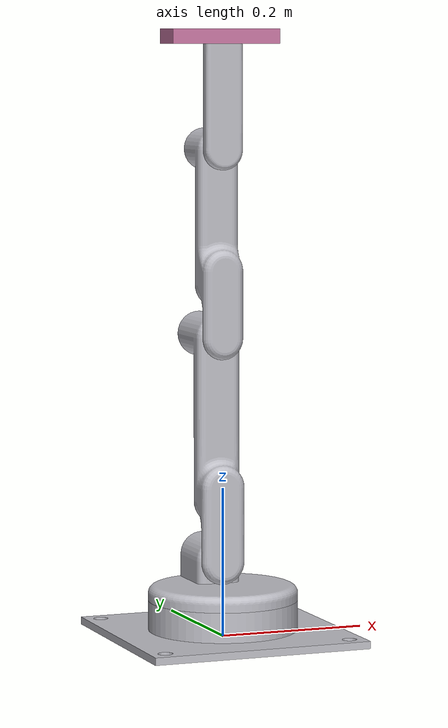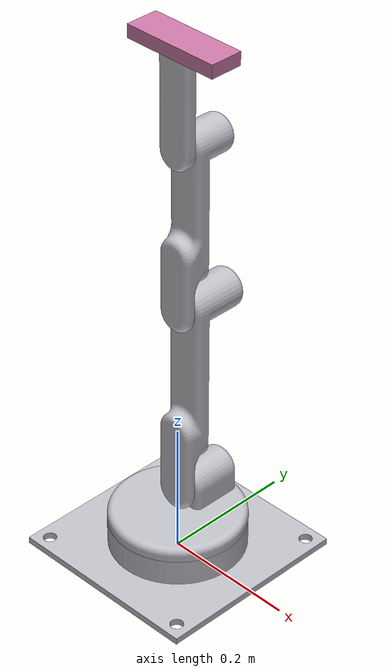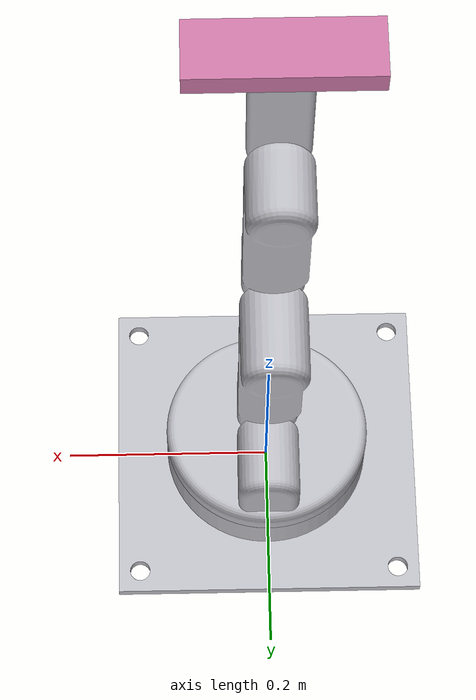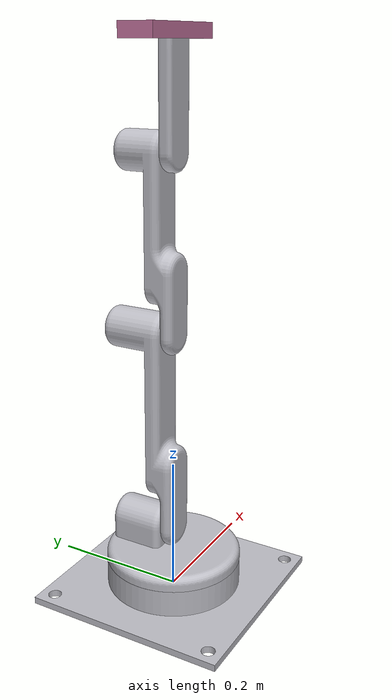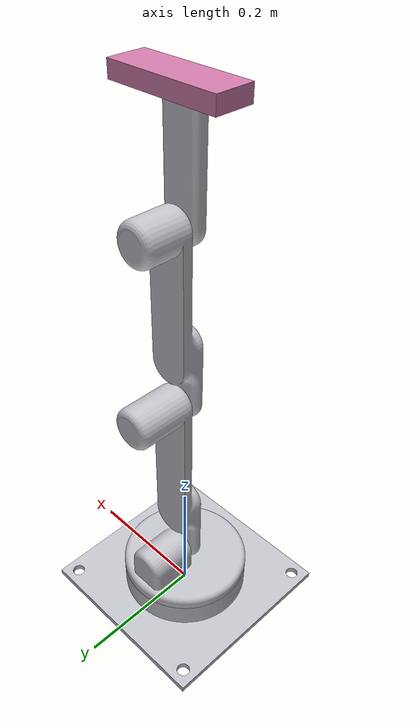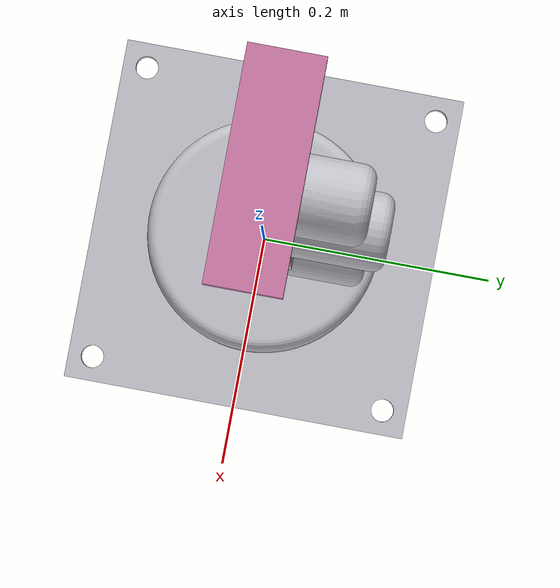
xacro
<robot xmlns:ns0="http://www.ros.org/wiki/xacro" name="Design">

<ns0:include filename="$(find main_description)/urdf/macros2.xacro" />
<ns0:include filename="$(find main_description)/urdf/arm.xacro" />

<ns0:property name="PI" value="3.14159" />

<link name="world" />

<link name="palm">
	<visual>
		<geometry>
			<box size="0.15 0.05 0.02" />
		</geometry>
	</visual>
	<inertial>
		<mass value="0.1" />
		<inertia ixx="0.001" ixy="0.001" ixz="0.001" iyy="0.001" iyz="0.001" izz="0.001" />
	</inertial>
	<collision>
		<geometry>
			<box size="0.15 0.05 0.02" />
		</geometry>
		</collision>
</link>

<gazebo reference="palm">
	<mu1>2000</mu1>
	<mu2>2000</mu2>
	<selfCollide>true</selfCollide>
	<gravity>true</gravity>
</gazebo>

<joint name="palm_arm_joint" type="fixed">
    <parent link="Link4_1" />
    <child link="palm" />
	<origin rpy="0 0 0" xyz="0.0 0 0.15" />
</joint>

<gazebo>
  	<plugin filename="libgazebo_ros_control.so" name="gazebo_ros_control">
		<robotNamespace />
  	</plugin>
 	<plugin filename="libspring_joint_plugin.so" name="spring_joint_plugin">
		<kConstant> 0.4 </kConstant>
	</plugin>
	<plugin filename="libjoint_controller_plugin.so" name="joint_controller_plugin">
		<jointNamesParam> arm_controller/ </jointNamesParam>
	</plugin>
	<plugin filename="libjoint_force_visualiser_plugin.so" name="joint_force_visualier_plugin">
		<robotNamespace />
	</plugin>

</gazebo>

</robot>

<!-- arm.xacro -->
<robot name="Design" xmlns:xacro="http://www.ros.org/wiki/xacro">

<xacro:include filename="$(find main_description)/urdf/Design.trans" />

<!--  PROPERTIES  -->

<xacro:property name="strength" value="10000"/>
<xacro:property name="speed" value = "0.01"/>
<xacro:property name="damping" value = "0"/>

<xacro:property name="offset" value="-0.05"/>

<!-- LINKS  -->

<link name="base_link">
  <inertial>
    <origin rpy="0 0 0" xyz="-6.108345103356556e-15 5.090287586130463e-17 0.01965246769632399"/>
    <mass value="16.83095492294922"/>
    <inertia ixx="0.079936" ixy="0.0" ixz="-0.0" iyy="0.079936" iyz="0.0" izz="0.152021"/>
  </inertial>
  <visual>
    <origin rpy="0 0 0" xyz="0 0 0"/>
    <geometry>
      <mesh filename="package://main_description/meshes/base_link.stl" scale="0.001 0.001 0.001"/>
    </geometry>
    <material name="silver"/>
  </visual>
  <collision>
    <origin rpy="0 0 0" xyz="0 0 0"/>
    <geometry>
      <mesh filename="package://main_description/meshes/base_link.stl" scale="0.001 0.001 0.001"/>
    </geometry>
  </collision>
</link>

<link name="Link1_1">
  <inertial>
    <origin rpy="0 0 0" xyz="-1.2279118486616705e-05 0.01442476351451121 0.020602870891923072"/>
    <mass value="0.9178712114753625"/>
    <inertia ixx="0.002553" ixy="0.0" ixz="0.0" iyy="0.002018" iyz="-0.00035" izz="0.00387"/>
  </inertial>
  <visual>
    <origin rpy="0 0 0" xyz="-0.0 -0.0 -0.05"/>
    <geometry>
      <mesh filename="package://main_description/meshes/Link1_1.stl" scale="0.001 0.001 0.001"/>
    </geometry>
    <material name="silver"/>
  </visual>
  <collision>
    <origin rpy="0 0 0" xyz="-0.0 -0.0 -0.05"/>
    <geometry>
      <mesh filename="package://main_description/meshes/Link1_1.stl" scale="0.001 0.001 0.001"/>
    </geometry>
  </collision>
</link>

<link name="Link2_1">
  <inertial>
    <origin rpy="0 0 0" xyz="-2.968335648842978e-07 0.018054267252499347 0.1868568711048091"/>
    <mass value="0.712050673323837"/>
    <inertia ixx="0.008737" ixy="0.0" ixz="0.0" iyy="0.008392" iyz="-0.001509" izz="0.000705"/>
  </inertial>
  <visual>
    <origin rpy="0 0 0" xyz="4.2e-05 -0.009807 -0.1"/>
    <geometry>
      <mesh filename="package://main_description/meshes/Link2_1.stl" scale="0.001 0.001 0.001"/>
    </geometry>
    <material name="silver"/>
  </visual>
  <collision>
    <origin rpy="0 0 0" xyz="4.2e-05 -0.009807 -0.1"/>
    <geometry>
      <mesh filename="package://main_description/meshes/Link2_1.stl" scale="0.001 0.001 0.001"/>
    </geometry>
  </collision>
</link>

<link name="Link3_1">
  <inertial>
    <origin rpy="0 0 0" xyz="3.894856228585856e-05 0.012744269230917583 0.14887041213898544"/>
    <mass value="0.5352959751924613"/>
    <inertia ixx="0.004471" ixy="-0.0" ixz="-1e-06" iyy="0.004348" iyz="-0.000747" izz="0.000361"/>
  </inertial>
  <visual>
    <origin rpy="0 0 0" xyz="4.2e-05 -0.009807 -0.4"/>
    <geometry>
      <mesh filename="package://main_description/meshes/Link3_1.stl" scale="0.001 0.001 0.001"/>
    </geometry>
    <material name="silver"/>
  </visual>
  <collision>
    <origin rpy="0 0 0" xyz="4.2e-05 -0.009807 -0.4"/>
    <geometry>
      <mesh filename="package://main_description/meshes/Link3_1.stl" scale="0.001 0.001 0.001"/>
    </geometry>
  </collision>
</link>

<link name="Link4_1">
  <inertial>
    <origin rpy="0 0 0" xyz="-3.684166078735014e-07 -0.010000499675700233 0.06497387205009375"/>
    <mass value="0.18168902324741887"/>
    <inertia ixx="0.000446" ixy="0.0" ixz="0.0" iyy="0.000477" iyz="0.0" izz="4.3e-05"/>
  </inertial>
  <visual>
    <origin rpy="0 0 0" xyz="-2.4e-05 -0.009807 -0.65"/>
    <geometry>
      <mesh filename="package://main_description/meshes/Link4_1.stl" scale="0.001 0.001 0.001"/>
    </geometry>
    <material name="silver"/>
  </visual>
  <collision>
    <origin rpy="0 0 0" xyz="-2.4e-05 -0.009807 -0.65"/>
    <geometry>
      <mesh filename="package://main_description/meshes/Link4_1.stl" scale="0.001 0.001 0.001"/>
    </geometry>
  </collision>
</link>

<!--  JOINTS  -->

<joint name="world_joint" type="fixed">
  <axis xyz="0 0 1"/>
	<origin xyz="0.0 0.0 0.0" rpy="0 0 0" />
	<parent link="world"/>
	<child link="base_link"/>
</joint>

<joint name="Rev1" type="continuous">
  <origin rpy="0 0 0" xyz="0.0 0.0 0.05"/>
  <parent link="base_link"/>
  <child link="Link1_1"/>
  <axis xyz="0.0 0.0 1.0"/>
  <limit effort="${strength}" lower="-6.283185" upper="6.283185" velocity="${speed}"/>
  <dynamics damping="${damping}" friction="0.0"/>
</joint>

<joint name="Rev2" type="revolute">
  <origin rpy="0 0 0" xyz="-4.2e-05 0.009807 0.05"/>
  <parent link="Link1_1"/>
  <child link="Link2_1"/>
  <axis xyz="0.0 -1.0 0.0"/>
  <limit effort="${strength}" lower="-1.396263" upper="1.396263" velocity="${speed}"/>
  <dynamics damping="${damping}" friction="0.0"/>
</joint>

<joint name="Rev3" type="revolute">
  <origin rpy="0 0 0" xyz="0.0 0.0 0.3"/>
  <parent link="Link2_1"/>
  <child link="Link3_1"/>
  <axis xyz="0.0 -1.0 0.0"/>
  <limit effort="${strength}" lower="-2.792527" upper="2.792527" velocity="${speed}"/>
  <dynamics damping="${damping}" friction="0.0"/>
</joint>

<joint name="Rev4" type="revolute">
  <origin rpy="0 0 0" xyz="6.6e-05 0.0 0.25"/>
  <parent link="Link3_1"/>
  <child link="Link4_1"/>
  <axis xyz="0.0 -1.0 0.0"/>
  <limit effort="${strength}" lower="-2.617994" upper="2.617994" velocity="${speed}"/>
  <dynamics damping="${damping}" friction="0.0"/>
</joint>

</robot>
